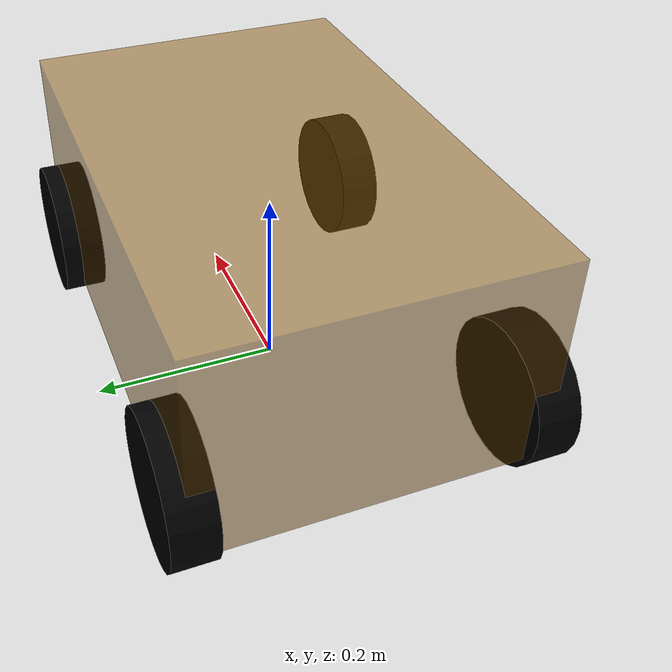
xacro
<!--
    使用 xacro 优化 URDF 版的小车底盘实现：

    实现思路:
    1.将一些常量、变量封装为 xacro:property
      比如:PI 值、小车底盘半径、离地间距、车轮半径、宽度 ....
    2.使用 宏 封装驱动轮以及支撑轮实现，调用相关宏生成驱动轮与支撑轮

-->
<!-- 根标签，必须声明 xmlns:xacro -->
<robot name="mecanumbot_base" xmlns:xacro="http://www.ros.org/wiki/xacro">
    <!-- 封装变量、常量 -->
    <!-- PI 值设置精度需要高一些，否则后续车轮翻转量计算时，可能会出现肉眼不能察觉的车轮倾斜，从而导致模型抖动 -->
    <xacro:property name="PI" value="3.1415926"/>
    <!-- 宏:黑色设置 -->
    <material name="black">
        <color rgba="0.0 0.0 0.0 1.0" />
    </material>
    <!-- 底盘属性 -->
    <xacro:property name="base_footprint_radius" value="0.001" /> <!-- base_footprint 半径  -->
    <xacro:property name="base_link_length" value="0.56" /> <!-- base_link 长 -->
    <xacro:property name="base_link_width" value="0.36" /> <!-- base_link 宽 -->
    <xacro:property name="base_link_height" value="0.23" /> <!-- base_link 高 -->
    <xacro:property name="wheel_offset" value="0.02" /> <!-- 轮偏置距离  -->
    <xacro:property name="wheel_distance" value="0.44" /> <!-- 前后轮轴距  -->
    <xacro:property name="earth_space" value="0.04" /> <!-- 离地间距 -->
    <xacro:property name="base_link_m" value="5" /> <!-- 质量  -->

    <!-- 底盘 -->
    <link name="base_footprint">
      <visual>
        <geometry>
          <sphere radius="${base_footprint_radius}" />
        </geometry>
      </visual>
    </link>

    <link name="base_link">
      <visual>
        <geometry>
          <box size="${base_link_length} ${base_link_width} ${base_link_height}"/>
        </geometry>
        <origin xyz="0 0 0" rpy="0 0 0" />
        <material name="yellow">
          <color rgba="0.5 0.3 0.0 0.5" />
        </material>
      </visual>
      <collision>
        <geometry>
          <box size="${base_link_length} ${base_link_width} ${base_link_height}"/>
        </geometry>
        <origin xyz="0 0 0" rpy="0 0 0" />
      </collision>
      <xacro:Box_inertial_matrix m="${base_link_m}" l="${base_link_length}" w="${base_link_width}" h="${base_link_height}" />

    </link>

    <joint name="base_link2base_footprint" type="fixed">
      <parent link="base_footprint" />
      <child link="base_link" />
      <origin xyz="0 0 ${earth_space + base_link_height / 2 }" />
    </joint>
    <gazebo reference="base_link">
        <material>Gazebo/Yellow</material>
    </gazebo>

    <!-- 驱动轮 -->
    <!-- 驱动轮属性 -->
    <xacro:property name="wheel_radius" value="0.076" /><!-- 半径 -->
    <xacro:property name="wheel_length" value="0.046" /><!-- 宽度 -->
    <xacro:property name="wheel_m" value="0.25" /> <!-- 质量  -->

    <!-- 驱动轮宏实现 -->
    <xacro:macro name="add_wheels" params="name flag1 flag2">
      <link name="${name}_wheel">
        <visual>
          <geometry>
            <cylinder radius="${wheel_radius}" length="${wheel_length}" />
          </geometry>
          <origin xyz="0.0 0.0 0.0" rpy="${PI / 2} 0.0 0.0" />
          <material name="black" />
        </visual>
        <collision>
          <geometry>
            <cylinder radius="${wheel_radius}" length="${wheel_length}" />
          </geometry>
          <origin xyz="0.0 0.0 0.0" rpy="${PI / 2} 0.0 0.0" />
        </collision>
        <xacro:cylinder_inertial_matrix m="${wheel_m}" r="${wheel_radius}" h="${wheel_length}" />

      </link>

      <joint name="${name}_wheel2base_link" type="continuous">
        <parent link="base_link" />
        <child link="${name}_wheel" />
        <origin xyz="${flag2 * ( wheel_distance / 2)} ${flag1 * ((base_link_width - wheel_length) / 2) + flag1 * wheel_offset} ${-(earth_space + base_link_height / 2 - wheel_radius) }" />
        <axis xyz="0 1 0" />
      </joint>

      <gazebo reference="${name}_wheel">
        <material>Gazebo/Red</material>
      </gazebo>

    </xacro:macro>
    <xacro:add_wheels name="left_front" flag1="1" flag2="1"  />
    <xacro:add_wheels name="right_front" flag1="-1" flag2="1" />
    <xacro:add_wheels name="left_rear" flag1="1" flag2="-1" />
    <xacro:add_wheels name="right_rear" flag1="-1" flag2="-1" />

</robot>
